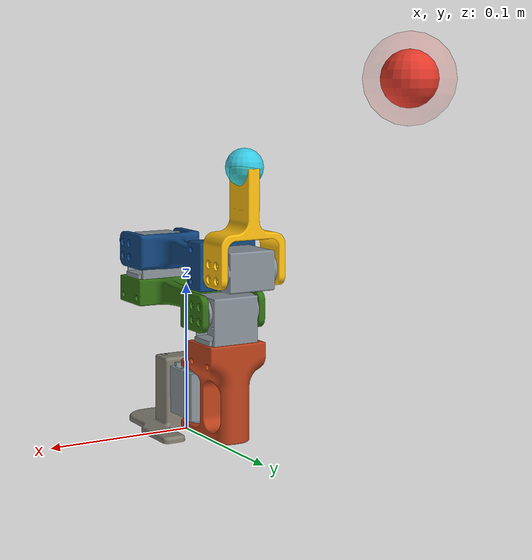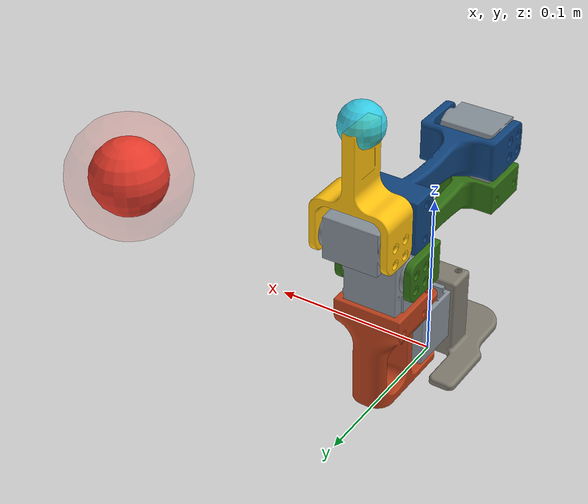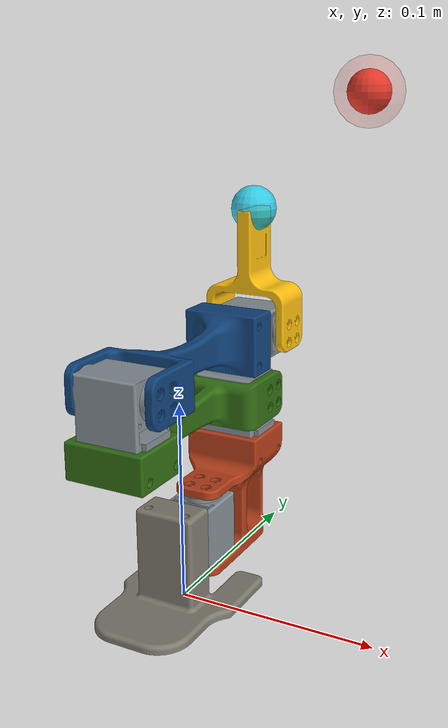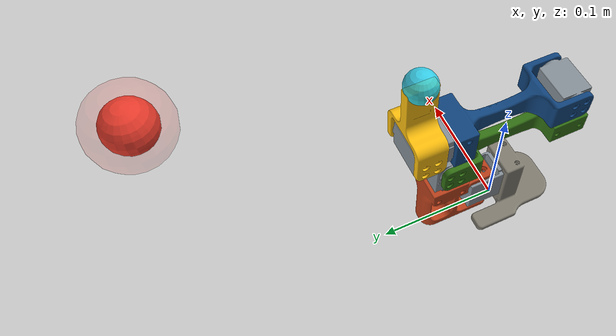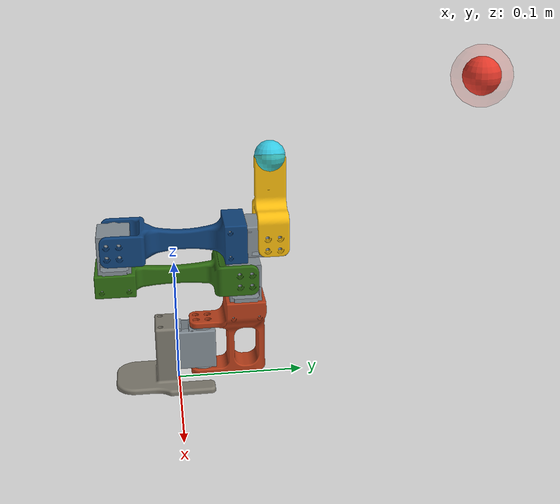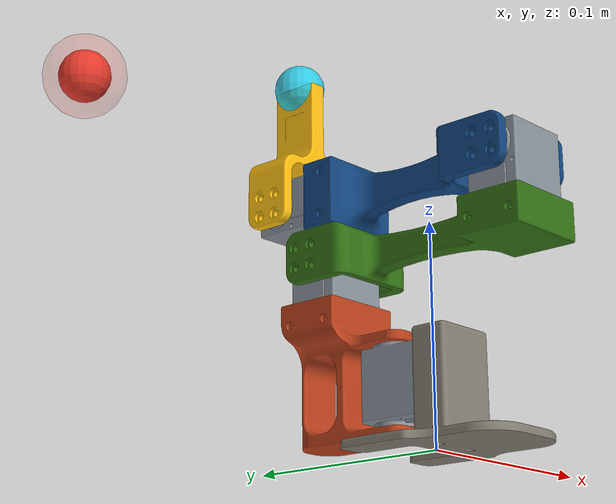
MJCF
<?xml version="1.0" ?>
<!-- Generated using onshape-to-robot -->
<!-- Onshape https://cad.onshape.com/documents/ab6e3c0ee4a2fc4151c6dae5/w/a4e52fdbe5152873bed2f6f9/e/bdebac347cab8c0af7a693ad -->
<mujoco model="rotom-rl">
  <compiler angle="radian" meshdir="assets" autolimits="true"/>
  <default>
    <default class="rotom-rl">
      <joint frictionloss="0.1" armature="0.005"/>
      <position kp="50" dampratio="1"/>
      <default class="visual">
        <geom type="mesh" contype="0" conaffinity="0" group="2"/>
      </default>
      <default class="collision">
        <geom group="3"/>
      </default>
    </default>
  </default>
  <worldbody>
    <body name="target" pos="0 0.24 0.24">
      <geom name="target_geom" type="sphere" size="0.015" rgba="0.92 0.24 0.18 0.95" contype="0" conaffinity="0"/>
      <site name="target_site" type="sphere" size="0.024" rgba="0.92 0.24 0.18 0.20" group="1"/>
    </body>
    <!-- Link ground -->
    <body name="ground" pos="0 0 0" quat="1 0 0 0" childclass="rotom-rl">
      <inertial pos="-0 0.00709416 0.0289597" mass="0.145776" fullinertia="3.96028e-05 2.15022e-05 3.33025e-05 0 3.8e-11 5.1146e-08"/>
      <!-- Part servo -->
      <geom type="mesh" class="visual" pos="-0 -0.0155 0.0292289" quat="0.5 -0.5 0.5 0.5" mesh="servo" material="servo_material"/>
      <geom type="mesh" class="collision" pos="-0 -0.0155 0.0292289" quat="0.5 -0.5 0.5 0.5" mesh="servo" material="servo_material" contype="0" conaffinity="0"/>
      <!-- Part ground -->
      <geom type="mesh" class="visual" pos="0 0 0" quat="1 0 0 0" mesh="ground" material="ground_material"/>
      <geom type="mesh" class="collision" pos="0 0 0" quat="1 0 0 0" mesh="ground" material="ground_material" contype="0" conaffinity="0"/>
      <!-- Link link_1 -->
      <body name="link_1" pos="-0 0.02 0.0292289" quat="0.707107 0 0 0.707107">
        <!-- Joint from ground to link_1 -->
        <joint axis="0 0 1" name="O" type="hinge" range="-1.787524 1.787524" frictionloss="0.1" armature="0.01" damping="0.5"/>
        <inertial pos="0.0330963 0.000205748 0.0396944" mass="0.188621" fullinertia="0.000111322 0.000111714 3.56272e-05 -5.0607e-08 -9.43914e-06 -3.57802e-07"/>
        <!-- Part link_1 -->
        <geom type="mesh" class="visual" pos="0.05 0.012 -0.023" quat="1 0 0 0" mesh="link_1" material="link_1_material"/>
        <geom type="mesh" class="collision" pos="0.05 0.012 -0.023" quat="1 0 0 0" mesh="link_1" material="link_1_material"/>
        <!-- Part servo_2 -->
        <geom type="mesh" class="visual" pos="0.0344 -2.89489e-05 0.026" quat="0.707107 -0 -0 0.707107" mesh="servo" material="servo_material"/>
        <geom type="mesh" class="collision" pos="0.0344 -2.89489e-05 0.026" quat="0.707107 -0 -0 0.707107" mesh="servo" material="servo_material"/>
        <!-- Link link2 -->
        <body name="link2" pos="0.0344 -2.89489e-05 0.0615" quat="0 -0 0.707107 0.707107">
          <!-- Joint from link_1 to link2 -->
          <joint axis="0 0 -1" name="A" type="hinge" range="-3.141593 0.40507" frictionloss="0.1" armature="0.01" damping="0.5"/>
          <inertial pos="0.0911143 0.0129454 0.000216754" mass="0.179251" fullinertia="5.47043e-05 0.000136109 0.000150546 -2.00129e-05 -3.29504e-07 -1.33806e-07"/>
          <!-- Part servo_3 -->
          <geom type="mesh" class="visual" pos="0.0996 -0.0065 -2.89489e-05" quat="0.5 -0.5 -0.5 -0.5" mesh="servo" material="servo_material"/>
          <geom type="mesh" class="collision" pos="0.0996 -0.0065 -2.89489e-05" quat="0.5 -0.5 -0.5 -0.5" mesh="servo" material="servo_material"/>
          <!-- Part link2 -->
          <geom type="mesh" class="visual" pos="0.02 -0.012 0" quat="0.5 -0.5 -0.5 -0.5" mesh="link2" material="link2_material"/>
          <geom type="mesh" class="collision" pos="0.02 -0.012 0" quat="0.5 -0.5 -0.5 -0.5" mesh="link2" material="link2_material"/>
          <!-- Link link3 -->
          <body name="link3" pos="0.0996 0.029 -2.89489e-05" quat="0 -0 1 0">
            <!-- Joint from link2 to link3 -->
            <joint axis="0 0 1" name="B" type="hinge" range="-0.0421948 3.141593" frictionloss="0.1" armature="0.01" damping="0.5"/>
            <inertial pos="0.0965002 -2.058e-09 -0.00021126" mass="0.183905" fullinertia="3.04765e-05 0.000194145 0.000183739 -2.7e-11 4.81307e-07 5.3e-11"/>
            <!-- Part link3 -->
            <geom type="mesh" class="visual" pos="0.02 -0.012 -0" quat="0.5 -0.5 -0.5 -0.5" mesh="link3" material="link3_material"/>
            <geom type="mesh" class="collision" pos="0.02 -0.012 -0" quat="0.5 -0.5 -0.5 -0.5" mesh="link3" material="link3_material"/>
            <!-- Part servo_4 -->
            <geom type="mesh" class="visual" pos="0.086 0 2.89489e-05" quat="0.707107 0 0.707107 -0" mesh="servo" material="servo_material"/>
            <geom type="mesh" class="collision" pos="0.086 0 2.89489e-05" quat="0.707107 0 0.707107 -0" mesh="servo" material="servo_material"/>
            <!-- Link link4 -->
            <body name="link4" pos="0.1215 0 2.89489e-05" quat="0.707107 -0 -0 0.707107">
              <!-- Joint from link3 to link4 -->
              <joint axis="0 0 1" name="C" type="hinge" range="-3.141593 0.377451" frictionloss="0.1" armature="0.01" damping="0.5"/>
              <inertial pos="0.0257597 -0 -0" mass="0.0230123" fullinertia="5.1346e-06 1.2118e-05 9.18122e-06 0 -0 0"/>
              <!-- Part link4 -->
              <geom type="mesh" class="visual" pos="0.02 -0.012 0" quat="0.5 -0.5 -0.5 -0.5" mesh="link4" material="link4_material"/>
              <geom type="mesh" class="collision" pos="0.02 -0.012 0" quat="0.5 -0.5 -0.5 -0.5" mesh="link4" material="link4_material"/>
              <!-- Frame ee -->
              <site group="1" name="ee" type="sphere" size="0.012" rgba="0.16 0.86 0.98 0.85" pos="0.064 -0 -0" quat="0 -0.707107 0 -0.707107"/>
            </body>
          </body>
        </body>
      </body>
    </body>
  </worldbody>
  <asset>
    <mesh file="link3.stl"/>
    <mesh file="ground.stl"/>
    <mesh file="link_1.stl"/>
    <mesh file="link4.stl"/>
    <mesh file="servo.stl"/>
    <mesh file="link2.stl"/>
    <material name="servo_material" rgba="0.529412 0.568627 0.6 1"/>
    <material name="ground_material" rgba="0.501961 0.486275 0.439216 1"/>
    <material name="link_1_material" rgba="0.729412 0.25098 0.105882 1"/>
    <material name="link2_material" rgba="0.196078 0.439216 0.0784314 1"/>
    <material name="link3_material" rgba="0.0627451 0.266667 0.490196 1"/>
    <material name="link4_material" rgba="1 0.756863 0.054902 1"/>
  </asset>
  <actuator>
    <position class="rotom-rl" name="O" joint="O" kp="20" dampratio="1.0" forcerange="-10.0 10.0" inheritrange="1"/>
    <position class="rotom-rl" name="A" joint="A" kp="20" dampratio="1.0" forcerange="-10.0 10.0" inheritrange="1"/>
    <position class="rotom-rl" name="B" joint="B" kp="20" dampratio="1.0" forcerange="-10.0 10.0" inheritrange="1"/>
    <position class="rotom-rl" name="C" joint="C" kp="20" dampratio="1.0" forcerange="-10.0 10.0" inheritrange="1"/>
  </actuator>
  <equality/>
</mujoco>
